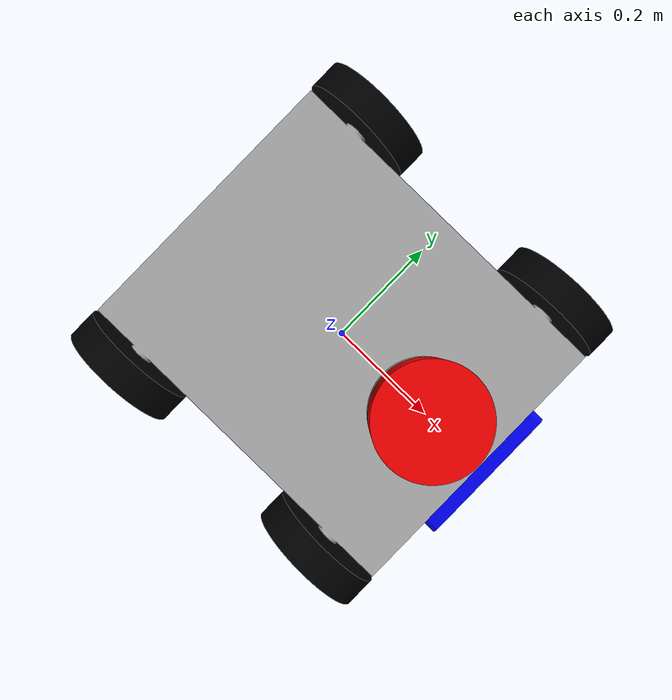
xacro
<?xml version="1.0" ?>
<robot name="susag_robot" xmlns:xacro="http://www.ros.org/wiki/xacro">

<xacro:include filename="$(find susag_robot_description)/urdf/materials.xacro" />
<xacro:include filename="$(find susag_robot_description)/urdf/susag_robot.trans" />
<xacro:include filename="$(find susag_robot_description)/urdf/susag_robot.gazebo" />

<link name="base_link">
  <inertial>
    <origin xyz="0.001302931634921084 -3.8148446253879843e-17 0.2105272851727495" rpy="0 0 0"/>
    <mass value="2.0"/>
    <inertia ixx="10.229874" iyy="13.7797" izz="16.621337" ixy="0.0" iyz="-0.0" ixz="-0.102671"/>
  </inertial>
  <visual>
    <origin xyz="0 0 0" rpy="0 0 0"/>
    <geometry>
      <mesh filename="file://$(find susag_robot_description)/meshes/base_link.stl" scale="0.001 0.001 0.001"/>
    </geometry>
    <material name="silver"/>
  </visual>
  <collision>
    <origin xyz="0 0 0" rpy="0 0 0"/>
    <geometry>
      <mesh filename="file://$(find susag_robot_description)/meshes/base_link.stl" scale="0.001 0.001 0.001"/>
    </geometry>
  </collision>
</link>

<!-- IMU Link -->
<link name="imu_link">
  <inertial>
    <mass value="0.01"/>
    <origin xyz="0 0 0" rpy="0 0 0"/>
    <inertia ixx="1e-6" ixy="0" ixz="0" iyy="1e-6" iyz="0" izz="1e-6"/>
  </inertial>
  <visual>
    <geometry>
      <sphere radius="0.02"/>
    </geometry>
    <material name="silver"/>
  </visual>
</link>

<link name="right_wheel_back_1">
  <inertial>
    <origin xyz="-8.715250743307479e-14 0.024999999999999967 0.0" rpy="0 0 0"/>
    <mass value="4.0"/>
    <inertia ixx="0.033244" iyy="0.061555" izz="0.033244" ixy="0.0" iyz="-0.0" ixz="0.0"/>
  </inertial>
  <visual>
    <origin xyz="0.21 0.3 -0.1" rpy="0 0 0"/>
    <geometry>
      <mesh filename="file://$(find susag_robot_description)/meshes/right_wheel_back_1.stl" scale="0.001 0.001 0.001"/>
    </geometry>
    <material name="black"/>
  </visual>
  <collision>
    <origin xyz="0.21 0.3 -0.1" rpy="0 0 0"/>
    <geometry>
      <mesh filename="file://$(find susag_robot_description)/meshes/right_wheel_back_1.stl" scale="0.001 0.001 0.001"/>
    </geometry>
  </collision>
</link>

<link name="right_wheel_front_1">
  <inertial>
    <origin xyz="8.718026300869042e-14 0.024999999999999967 0.0" rpy="0 0 0"/>
    <mass value="4.0"/>
    <inertia ixx="0.033244" iyy="0.061555" izz="0.033244" ixy="-0.0" iyz="-0.0" ixz="0.0"/>
  </inertial>
  <visual>
    <origin xyz="-0.21 0.3 -0.1" rpy="0 0 0"/>
    <geometry>
      <mesh filename="file://$(find susag_robot_description)/meshes/right_wheel_front_1.stl" scale="0.001 0.001 0.001"/>
    </geometry>
    <material name="black"/>
  </visual>
  <collision>
    <origin xyz="-0.21 0.3 -0.1" rpy="0 0 0"/>
    <geometry>
      <mesh filename="file://$(find susag_robot_description)/meshes/right_wheel_front_1.stl" scale="0.001 0.001 0.001"/>
    </geometry>
  </collision>
</link>

<link name="left_wheel_front_1">
  <inertial>
    <origin xyz="8.718026300869042e-14 -0.025000000000000078 0.0" rpy="0 0 0"/>
    <mass value="4.0"/>
    <inertia ixx="0.033244" iyy="0.061555" izz="0.033244" ixy="-0.0" iyz="-0.0" ixz="0.0"/>
  </inertial>
  <visual>
    <origin xyz="-0.21 -0.3 -0.1" rpy="0 0 0"/>
    <geometry>
      <mesh filename="file://$(find susag_robot_description)/meshes/left_wheel_front_1.stl" scale="0.001 0.001 0.001"/>
    </geometry>
    <material name="black"/>
  </visual>
  <collision>
    <origin xyz="-0.21 -0.3 -0.1" rpy="0 0 0"/>
    <geometry>
      <mesh filename="file://$(find susag_robot_description)/meshes/left_wheel_front_1.stl" scale="0.001 0.001 0.001"/>
    </geometry>
  </collision>
</link>

<link name="left_wheel_back_1">
  <inertial>
    <origin xyz="-8.715250743307479e-14 -0.025000000000000078 0.0" rpy="0 0 0"/>
    <mass value="4.0"/>
    <inertia ixx="0.033244" iyy="0.061555" izz="0.033244" ixy="0.0" iyz="-0.0" ixz="0.0"/>
  </inertial>
  <visual>
    <origin xyz="0.21 -0.3 -0.1" rpy="0 0 0"/>
    <geometry>
      <mesh filename="file://$(find susag_robot_description)/meshes/left_wheel_back_1.stl" scale="0.001 0.001 0.001"/>
    </geometry>
    <material name="black"/>
  </visual>
  <collision>
    <origin xyz="0.21 -0.3 -0.1" rpy="0 0 0"/>
    <origin xyz="0.21 -0.3 -0.1" rpy="0 0 0"/>
    <geometry>
      <mesh filename="file://$(find susag_robot_description)/meshes/left_wheel_back_1.stl" scale="0.001 0.001 0.001"/>
    </geometry>
  </collision>
</link>

<link name="lidar_1">
  <inertial>
    <origin xyz="0.0 -1.3724499200289256e-17 0.03749999999999998" rpy="0 0 0"/>
    <mass value="1.40407129575557"/>
    <inertia ixx="0.019508" iyy="0.019508" izz="0.029261" ixy="-0.0" iyz="-0.0" ixz="0.0"/>
  </inertial>
  <visual>
    <origin xyz="-0.15 -0.0 -0.39" rpy="0 0 0"/>
    <geometry>
      <mesh filename="file://$(find susag_robot_description)/meshes/lidar_1.stl" scale="0.001 0.001 0.001"/>
    </geometry>
    <material name="red"/>
  </visual>
  <collision>
    <origin xyz="-0.15 -0.0 -0.39" rpy="0 0 0"/>
    <geometry>
      <mesh filename="file://$(find susag_robot_description)/meshes/lidar_1.stl" scale="0.001 0.001 0.001"/>
    </geometry>
  </collision>
</link>

<link name="rgbdcam_1">
  <inertial>
    <origin xyz="0.02499999999999991 -5.101735084505211e-17 -2.7755575615628914e-17" rpy="0 0 0"/>
    <mass value="0.582105956989346"/>
    <inertia ixx="0.016022" iyy="0.001218" izz="0.016296" ixy="-0.0" iyz="0.0" ixz="-0.0"/>
  </inertial>
  <visual>
    <origin xyz="-0.25 -0.0 -0.21" rpy="0 0 0"/>
    <geometry>
      <mesh filename="file://$(find susag_robot_description)/meshes/rgbdcam_1.stl" scale="0.001 0.001 0.001"/>
    </geometry>
    <material name="blue"/>
  </visual>
  <collision>
    <origin xyz="-0.25 -0.0 -0.21" rpy="0 0 0"/>
    <geometry>
      <mesh filename="file://$(find susag_robot_description)/meshes/rgbdcam_1.stl" scale="0.001 0.001 0.001"/>
    </geometry>
  </collision>
</link>

<!-- Optical frame for rgbd camera (REP-103/120: x-right, y-down, z-forward) -->
<link name="rgbdcam_1_optical"/>

<joint name="rgbdcam_1_optical_joint" type="fixed">
  <parent link="rgbdcam_1"/>
  <child link="rgbdcam_1_optical"/>

  <!-- Position this at the optical center of the sensor.
       Start with zero offset, then tune xyz as needed. -->
  <origin xyz="0 0 0" rpy="-1.570796 0 -1.570796"/>
</joint>

<joint name="right_wheel_back_joint" type="continuous">
  <origin xyz="-0.21 -0.3 0.1" rpy="0 0 0"/>
  <parent link="base_link"/>
  <child link="right_wheel_back_1"/>
  <axis xyz="0.0 1.0 0.0"/>
</joint>

<joint name="right_wheel_front_joint" type="continuous">
  <origin xyz="0.21 -0.3 0.1" rpy="0 0 0"/>
  <parent link="base_link"/>
  <child link="right_wheel_front_1"/>
  <axis xyz="0.0 1.0 0.0"/>
</joint>

<joint name="left_wheel_front_joint" type="continuous">
  <origin xyz="0.21 0.3 0.1" rpy="0 0 0"/>
  <parent link="base_link"/>
  <child link="left_wheel_front_1"/>
  <axis xyz="0.0 1.0 0.0"/>
</joint>

<joint name="left_wheel_back_joint" type="continuous">
  <origin xyz="-0.21 0.3 0.1" rpy="0 0 0"/>
  <parent link="base_link"/>
  <child link="left_wheel_back_1"/>
  <axis xyz="0.0 1.0 0.0"/>
</joint>

<joint name="lidar" type="fixed">
  <origin xyz="0.15 0.0 0.39" rpy="0 0 0"/>
  <parent link="base_link"/>
  <child link="lidar_1"/>
</joint>

<joint name="rgbdcam_joint" type="fixed">
  <origin xyz="0.25 0.0 0.21" rpy="0 0 0"/>
  <parent link="base_link"/>
  <child link="rgbdcam_1"/>
</joint>

<joint name="imu_joint" type="fixed">
  <origin xyz="0 0 0.2" rpy="0 0 0"/>
  <parent link="base_link"/>
  <child link="imu_link"/>
</joint>

</robot>

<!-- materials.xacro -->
<robot name="susag_robot" xmlns:xacro="http://www.ros.org/wiki/xacro" >

<material name="silver">
  <color rgba="0.700 0.700 0.700 1.000"/>
</material>

<material name="black">
  <color rgba="0 0 0 1"/>
</material>

<material name="red">
  <color rgba="1 0 0 1"/>
</material>

<material name="blue">
  <color rgba="0 0 1 1"/>
</material>

<material name="grey">
  <color rgba="0.5 0.5 0.5 1"/>
</material>

</robot>

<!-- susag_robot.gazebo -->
<robot name="susag_robot" xmlns:xacro="http://www.ros.org/wiki/xacro" >

<xacro:property name="body_color" value="Gazebo/Silver" />
<xacro:property name="wheel_color" value="Gazebo/Black" />
<xacro:property name="lidar_color" value="Gazebo/Red" />
<xacro:property name="camera_color" value="Gazebo/Blue" />

<gazebo>
  <plugin name="control" filename="libgazebo_ros_control.so"/>
</gazebo>
<gazebo reference="base_link">
  <material>${body_color}</material>
  <mu1>0.1</mu1>
  <mu2>0.1</mu2>
  <self_collide>true</self_collide>
  <gravity>true</gravity>
</gazebo>

<gazebo reference="right_wheel_back_1">
  <material>${wheel_color}</material>
  <mu1>1200</mu1>
  <mu2>1200</mu2>
  <self_collide>true</self_collide>
</gazebo>

<gazebo reference="right_wheel_front_1">
  <material>${wheel_color}</material>
  <mu1>1200</mu1>
  <mu2>1200</mu2>
  <self_collide>true</self_collide>
</gazebo>

<gazebo reference="left_wheel_front_1">
  <material>${wheel_color}</material>
  <mu1>1200</mu1>
  <mu2>1200</mu2>
  <self_collide>true</self_collide>
</gazebo>

<gazebo reference="left_wheel_back_1">
  <material>${wheel_color}</material>
  <mu1>1200</mu1>
  <mu2>1200</mu2>
  <self_collide>true</self_collide>
</gazebo>

<gazebo reference="lidar_1">
  <material>${lidar_color}</material>
  <mu1>0.2</mu1>
  <mu2>0.2</mu2>
  <self_collide>true</self_collide>
</gazebo>

<gazebo reference="rgbdcam_1">
  <material>${camera_color}</material>
  <mu1>0.2</mu1>
  <mu2>0.2</mu2>
  <self_collide>true</self_collide>
</gazebo>

<gazebo>
  <plugin name="diff_drive" filename="libgazebo_ros_diff_drive.so">
    <update_rate>500</update_rate>
    <num_wheel_pairs>2</num_wheel_pairs>

    <!-- LEFT side -->
    <left_joint>left_wheel_back_joint</left_joint>
    <left_joint>left_wheel_front_joint</left_joint>

    <!-- RIGHT side -->
    <right_joint>right_wheel_back_joint</right_joint>
    <right_joint>right_wheel_front_joint</right_joint>

    <wheel_separation>0.6</wheel_separation>
    <wheel_diameter>0.2</wheel_diameter>

    <wheel_separation>0.6</wheel_separation>
    <wheel_diameter>0.2</wheel_diameter>

    <!-- Limits-->
    <max_wheel_torque>20</max_wheel_torque>
    <max_wheel_acceleration>1.0</max_wheel_acceleration>

    <!-- Outputs -->
    <publish_odom>true</publish_odom>
    <publish_odom_tf>true</publish_odom_tf>
    <publish_wheel_tf>false</publish_wheel_tf>

    <odometry_frame>odom</odometry_frame>
    <robot_base_frame>base_link</robot_base_frame>
  </plugin>
</gazebo>

<!-- LIDAR plugin -->
<gazebo reference="lidar_1">
  <sensor type="ray" name="lidar_sensor">
    <pose>0 0 0 0 0 0</pose>
    <update_rate>30</update_rate>
    <visualize>true</visualize>

    <ray>
      <scan>
        <horizontal>
          <samples>720</samples>
          <resolution>1</resolution>
          <min_angle>-3.141592653589793</min_angle>
          <max_angle>3.141592653589793</max_angle>
        </horizontal>
      </scan>

      <range>
        <min>0.1</min>
        <max>12.0.0</max>
        <resolution>0.01</resolution>
      </range>
      <noise>
        <type>gaussian</type>
        <mean>0.0</mean>
        <stddev>0.02</stddev>
      </noise>
    </ray>

    <plugin name="gazebo_ros_lidar" filename="libgazebo_ros_ray_sensor.so">
      <ros>
        <remapping>~/out:=scan</remapping>
      </ros>
      <output_type>sensor_msgs/LaserScan</output_type>
      <frame_name>lidar_1</frame_name>
    </plugin>
  </sensor>
</gazebo>

<!-- D435-like depth camera -->
<gazebo reference="rgbdcam_1">
  <sensor type="depth" name="depth_camera_sensor">
    <update_rate>30</update_rate>            <!-- 30 Hz typical -->
    <always_on>1</always_on>
    <pose>0 0 0 0 0 0</pose>

    <camera name="depth_camera">
      <!-- 86–87° H-FOV ≈ 1.50 rad (your 60° = 1.047 was too narrow) -->
      <horizontal_fov>1.50</horizontal_fov>

      <!-- Use a 16:9 depth mode like the real camera -->
      <image>
        <width>1280</width>                  <!-- or 848 for lighter sim -->
        <height>720</height>                 <!-- 1280x720 matches spec -->
        <format>R8G8B8</format>              <!-- color buffer format (ok) -->
      </image>

      <!-- Clip to realistic working range -->
      <clip>
        <!-- D435 Min-Z ~0.28 m @ max res; use 0.1–0.28 if you need closer -->
        <near>0.28</near>
        <far>10.0</far>                      <!-- workable long range -->
      </clip>

      <!-- Keep depth imager distortion off; Gazebo pinhole model -->
      <distortion>
        <k1>0.0</k1><k2>0.0</k2><k3>0.0</k3>
        <p1>0.0</p1><p2>0.0</p2>
        <center>0.5 0.5</center>
      </distortion>
    </camera>

    <plugin name="depth_camera_plugin" filename="libgazebo_ros_camera.so">
      <ros>
        <namespace>susag/depth</namespace>
        <remapping>~/image:=depth_camera/image_raw</remapping>
        <remapping>~/camera_info:=depth_camera/camera_info</remapping>
        <remapping>~/depth_image:=depth_camera/depth/image_raw</remapping>
        <remapping>~/depth_camera_info:=depth_camera/depth/camera_info</remapping>
        <remapping>~/points:=depth_camera/points</remapping>
      </ros>

      <camera_name>depth_camera</camera_name>
      <frame_name>rgbdcam_1_optical</frame_name>

      <!-- Set the real stereo baseline (was 0.07 m) -->
      <hack_baseline>0.05</hack_baseline>

      <min_depth>0.28</min_depth>
    </plugin>

    <!-- Optional noise to mimic <~2% error @ 2 m -->
    <noise>
      <type>gaussian</type>
      <mean>0.0</mean>
      <!-- 2% of 2 m ≈ 4 cm; scale down for sim stability -->
      <stddev>0.02</stddev>   <!-- meters of depth noise; tune 0.005–0.02 -->
    </noise>
  </sensor>
</gazebo>

<!-- IMU  -->
<gazebo reference="imu_link">
  <sensor name="imu_sensor" type="imu">
    <always_on>true</always_on>
    <update_rate>100.0</update_rate>
    <plugin name="imu_plugin" filename="libgazebo_ros_imu_sensor.so">
      <ros>
        <remapping>~/out:=imu/data</remapping>
      </ros>
      <gaussianNoise>0.01</gaussianNoise>
      <frameName>imu_link</frameName>
    </plugin>
  </sensor>
</gazebo>

</robot>
